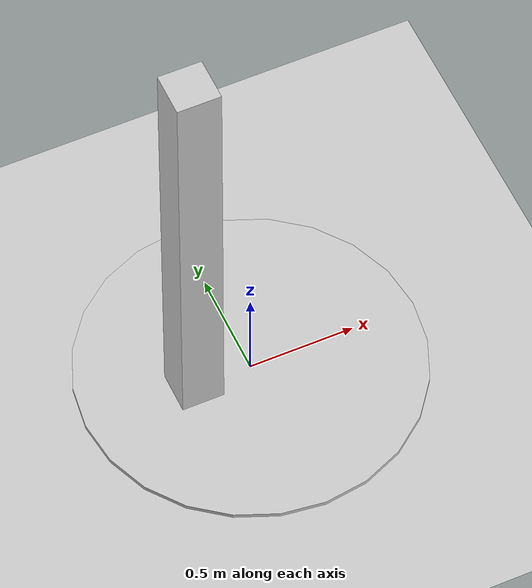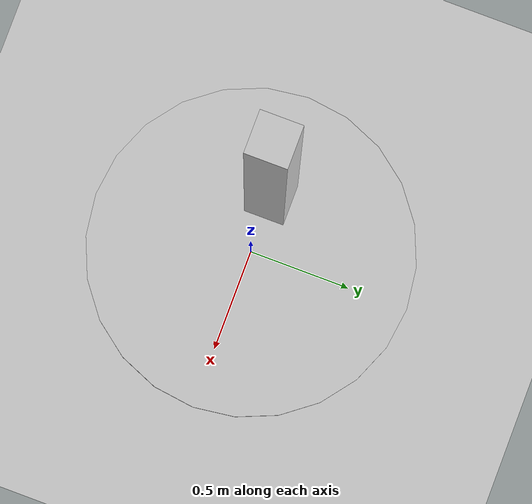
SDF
<?xml version="1.0" ?>
<sdf version="1.6">
  <world name="default">
    <physics name="1ms" type="ode">
      <max_step_size>0.001</max_step_size>
      <real_time_factor>1</real_time_factor>
    </physics>

    <light type="directional" name="sun">
      <cast_shadows>true</cast_shadows>
      <pose>0 0 10 0 0 0</pose>
      <diffuse>0.8 0.8 0.8 1</diffuse>
      <specular>0.2 0.2 0.2 1</specular>
      <attenuation>
        <range>1000</range>
        <constant>0.9</constant>
        <linear>0.01</linear>
        <quadratic>0.001</quadratic>
      </attenuation>
      <direction>-0.5 0.1 -0.9</direction>
    </light>

    <model name="ground_plane">
      <static>true</static>
      <link name="link">
        <collision name="collision">
          <geometry>
            <plane>
              <normal>0 0 1</normal>
              <size>100 100</size>
            </plane>
          </geometry>
        </collision>
        <visual name="visual">
          <geometry>
            <plane>
              <normal>0 0 1</normal>
              <size>100 100</size>
            </plane>
          </geometry>
          <material>
            <ambient>0.8 0.8 0.8 1</ambient>
            <diffuse>0.8 0.8 0.8 1</diffuse>
            <specular>0.8 0.8 0.8 1</specular>
          </material>
        </visual>
      </link>
    </model>

    <model name="double_pendulum_with_base0">
      <pose>0 0 0 0 0 0</pose>
      <frame name="base_frame" />
      <link name="base">
        <inertial>
          <mass>100</mass>
        </inertial>
        <visual name="vis_plate_on_ground">
          <pose>0 0 0.01 0 0 0</pose>
          <geometry>
            <cylinder>
              <radius>0.8</radius>
              <length>0.02</length>
            </cylinder>
          </geometry>
          <material>
            <ambient>0.8 0.8 0.8 1</ambient>
            <diffuse>0.8 0.8 0.8 1</diffuse>
            <specular>0.8 0.8 0.8 1</specular>
          </material>
        </visual>
        <visual name="vis_pole">
          <pose>-0.275 0 1.1 0 0 0</pose>
          <geometry>
            <box>
              <size>0.2 0.2 2.2</size>
            </box>
          </geometry>
          <material>
            <ambient>0.8 0.8 0.8 1</ambient>
            <diffuse>0.8 0.8 0.8 1</diffuse>
            <specular>0.8 0.8 0.8 1</specular>
          </material>
        </visual>
        <collision name="col_plate_on_ground">
          <pose>0 0 0.01 0 0 0</pose>
          <geometry>
            <cylinder>
              <radius>0.8</radius>
              <length>0.02</length>
            </cylinder>
          </geometry>
        </collision>
        <collision name="col_pole">
          <pose>-0.275 0 1.1 0 0 0</pose>
          <geometry>
            <box>
              <size>0.2 0.2 2.2</size>
            </box>
          </geometry>
        </collision>
      </link>

      <plugin
        filename="ignition-gazebo-pose-publisher-system"
        name="ignition::gazebo::systems::PosePublisher">
        <publish_link_pose>true</publish_link_pose>
        <use_pose_vector_msg>true</use_pose_vector_msg>
        <static_update_frequency>1</static_update_frequency>
      </plugin>

    </model>

  </world>
</sdf>
